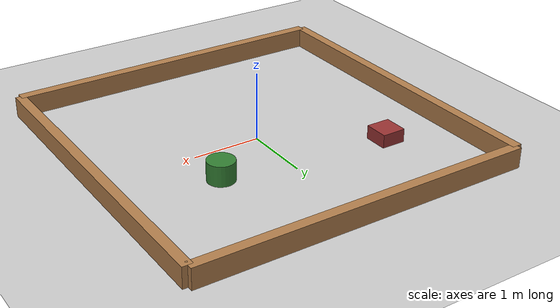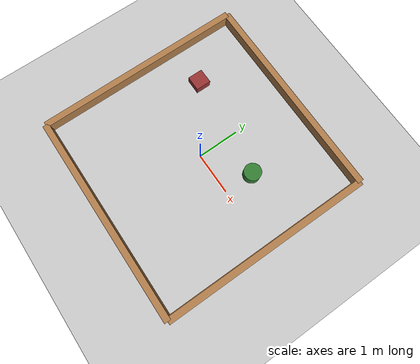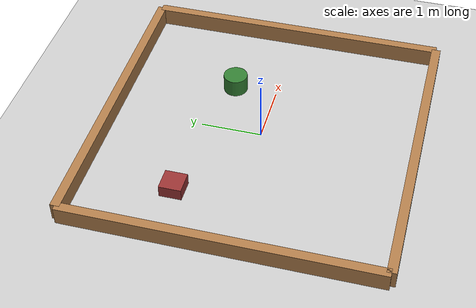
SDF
<?xml version="1.0" ?>
<sdf version="1.9">
  <world name="mini_pupper_home">
    <physics name="1ms" type="ignored">
      <max_step_size>0.001</max_step_size>
      <real_time_factor>1.0</real_time_factor>
    </physics>

    <plugin filename="gz-sim-physics-system" name="gz::sim::systems::Physics"/>
    <plugin filename="gz-sim-scene-broadcaster-system" name="gz::sim::systems::SceneBroadcaster"/>
    <plugin filename="gz-sim-user-commands-system" name="gz::sim::systems::UserCommands"/>
    <plugin filename="gz-sim-sensors-system" name="gz::sim::systems::Sensors">
      <render_engine>ogre2</render_engine>
    </plugin>
    <plugin filename="gz-sim-imu-system" name="gz::sim::systems::Imu"/>
    <plugin filename="gz-sim-contact-system" name="gz::sim::systems::Contact"/>

    <light type="directional" name="sun">
      <cast_shadows>true</cast_shadows>
      <pose>0 0 10 0 0 0</pose>
      <diffuse>0.8 0.8 0.8 1</diffuse>
      <specular>0.2 0.2 0.2 1</specular>
      <attenuation>
        <range>1000</range>
        <constant>0.9</constant>
        <linear>0.01</linear>
        <quadratic>0.001</quadratic>
      </attenuation>
      <direction>-0.5 0.1 -0.9</direction>
    </light>

    <model name="ground_plane">
      <static>true</static>
      <link name="link">
        <collision name="collision">
          <geometry>
            <plane>
              <normal>0 0 1</normal>
              <size>100 100</size>
            </plane>
          </geometry>
          <surface>
            <friction>
              <ode>
                <mu>100</mu>
                <mu2>50</mu2>
              </ode>
            </friction>
          </surface>
        </collision>
        <visual name="visual">
          <geometry>
            <plane>
              <normal>0 0 1</normal>
              <size>100 100</size>
            </plane>
          </geometry>
          <material>
            <ambient>0.8 0.8 0.8 1</ambient>
            <diffuse>0.8 0.8 0.8 1</diffuse>
            <specular>0.8 0.8 0.8 1</specular>
          </material>
        </visual>
      </link>
    </model>

    <!-- Simple room walls -->
    <model name="wall_north">
      <static>true</static>
      <pose>0 2.5 0.15 0 0 0</pose>
      <link name="link">
        <collision name="collision">
          <geometry><box><size>5 0.15 0.3</size></box></geometry>
        </collision>
        <visual name="visual">
          <geometry><box><size>5 0.15 0.3</size></box></geometry>
          <material>
            <ambient>0.7 0.5 0.3 1</ambient>
            <diffuse>0.7 0.5 0.3 1</diffuse>
          </material>
        </visual>
      </link>
    </model>

    <model name="wall_south">
      <static>true</static>
      <pose>0 -2.5 0.15 0 0 0</pose>
      <link name="link">
        <collision name="collision">
          <geometry><box><size>5 0.15 0.3</size></box></geometry>
        </collision>
        <visual name="visual">
          <geometry><box><size>5 0.15 0.3</size></box></geometry>
          <material>
            <ambient>0.7 0.5 0.3 1</ambient>
            <diffuse>0.7 0.5 0.3 1</diffuse>
          </material>
        </visual>
      </link>
    </model>

    <model name="wall_east">
      <static>true</static>
      <pose>2.5 0 0.15 0 0 1.5708</pose>
      <link name="link">
        <collision name="collision">
          <geometry><box><size>5 0.15 0.3</size></box></geometry>
        </collision>
        <visual name="visual">
          <geometry><box><size>5 0.15 0.3</size></box></geometry>
          <material>
            <ambient>0.7 0.5 0.3 1</ambient>
            <diffuse>0.7 0.5 0.3 1</diffuse>
          </material>
        </visual>
      </link>
    </model>

    <model name="wall_west">
      <static>true</static>
      <pose>-2.5 0 0.15 0 0 1.5708</pose>
      <link name="link">
        <collision name="collision">
          <geometry><box><size>5 0.15 0.3</size></box></geometry>
        </collision>
        <visual name="visual">
          <geometry><box><size>5 0.15 0.3</size></box></geometry>
          <material>
            <ambient>0.7 0.5 0.3 1</ambient>
            <diffuse>0.7 0.5 0.3 1</diffuse>
          </material>
        </visual>
      </link>
    </model>

    <!-- Obstacle: box -->
    <model name="obstacle_box">
      <static>true</static>
      <pose>-1.5 1.0 0.1 0 0 0</pose>
      <link name="link">
        <collision name="collision">
          <geometry><box><size>0.36 0.36 0.2</size></box></geometry>
        </collision>
        <visual name="visual">
          <geometry><box><size>0.36 0.36 0.2</size></box></geometry>
          <material>
            <ambient>0.6 0.2 0.2 1</ambient>
            <diffuse>0.6 0.2 0.2 1</diffuse>
          </material>
        </visual>
      </link>
    </model>

    <!-- Obstacle: cylinder -->
    <model name="obstacle_cylinder">
      <static>true</static>
      <pose>1.0 0.7 0.15 0 0 0</pose>
      <link name="link">
        <collision name="collision">
          <geometry><cylinder><radius>0.2</radius><length>0.3</length></cylinder></geometry>
        </collision>
        <visual name="visual">
          <geometry><cylinder><radius>0.2</radius><length>0.3</length></cylinder></geometry>
          <material>
            <ambient>0.2 0.5 0.2 1</ambient>
            <diffuse>0.2 0.5 0.2 1</diffuse>
          </material>
        </visual>
      </link>
    </model>

    <gravity>0 0 -9.8</gravity>
    <magnetic_field>6e-06 2.3e-05 -4.2e-05</magnetic_field>
    <atmosphere type="adiabatic"/>

    <scene>
      <ambient>0.4 0.4 0.4 1</ambient>
      <background>0.7 0.7 0.7 1</background>
      <shadows>true</shadows>
    </scene>
  </world>
</sdf>
